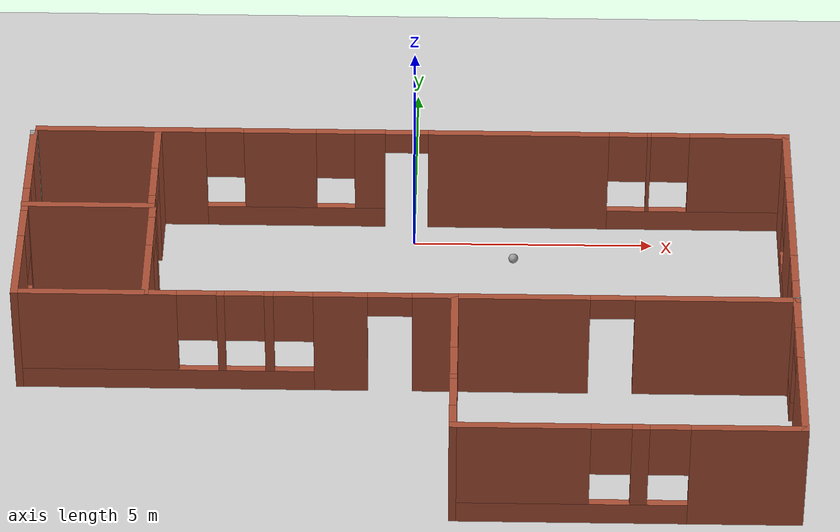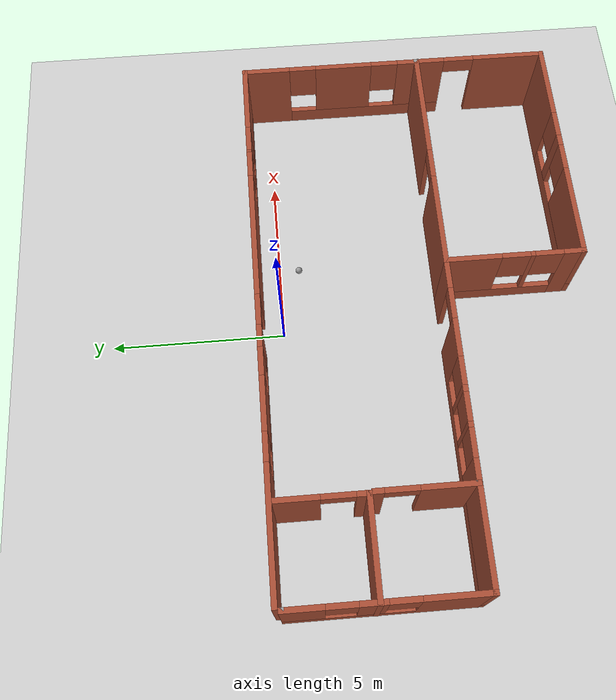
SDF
<sdf version="1.6">
 <world name="default">
  <light name="sun" type="directional">
   <pose>0 0 10 0 -0 0</pose>
   <diffuse>0.8 0.8 0.8 1</diffuse>
   <specular>0.2 0.2 0.2 1</specular>
   <attenuation>
    <range>1000</range>
    <constant>0.9</constant>
    <linear>0.01</linear>
    <quadratic>0.001</quadratic>
   </attenuation>
   <direction>-0.5 0.1 -0.9</direction>
  </light>
  <model name="ground_plane">
   <static>1</static>
   <link name="link">
    <collision name="collision">
     <geometry><plane><normal>0 0 1</normal><size>100 100</size></plane></geometry>
     <surface>
      <contact><collide_bitmask>65535</collide_bitmask></contact>
      <friction><ode><mu>100</mu><mu2>50</mu2></ode></friction>
     </surface>
    </collision>
    <visual name="visual">
     <cast_shadows>0</cast_shadows>
     <geometry><plane><normal>0 0 1</normal><size>100 100</size></plane></geometry>
     <material>
      <script><uri>file://media/materials/scripts/gazebo.material</uri><name>Gazebo/Grey</name></script>
     </material>
    </visual>
   </link>
  </model>
  <gravity>0 0 -9.8</gravity>
  <magnetic_field>6e-06 2.3e-05 -4.2e-05</magnetic_field>
  <atmosphere type="adiabatic"/>
  <physics name="default_physics" default="0" type="ode">
   <max_step_size>0.001</max_step_size>
   <real_time_factor>1</real_time_factor>
   <real_time_update_rate>1000</real_time_update_rate>
  </physics>
  <scene><ambient>0.4 0.4 0.4 1</ambient><background>0.7 0.7 0.7 1</background><shadows>1</shadows></scene>
  <spherical_coordinates>
   <surface_model>EARTH_WGS84</surface_model>
   <latitude_deg>0</latitude_deg>
   <longitude_deg>0</longitude_deg>
   <elevation>0</elevation>
   <heading_deg>0</heading_deg>
  </spherical_coordinates>
  <model name="Building">
   <pose>-0.117443 -3.92909 0 0 -0 0</pose>
   <link name="Wall_0">
    <pose>0.048201 4.55 0 0 -0 0</pose>
    <visual name="Wall_0_Visual_0">
     <pose>-6.09569 0 1.25 0 -0 0</pose>
     <geometry><box><size>3.55863 0.15 2.5</size></box></geometry>
     <material>
      <script><uri>file://media/materials/scripts/gazebo.material</uri><name>Gazebo/Bricks</name></script>
      <ambient>1 1 1 1</ambient>
     </material>
     <meta><layer>0</layer></meta>
    </visual>
    <collision name="Wall_0_Collision_0">
     <geometry><box><size>3.55863 0.15 2.5</size></box></geometry>
     <pose>-6.09569 0 1.25 0 -0 0</pose>
    </collision>
    <visual name="Wall_0_Visual_1">
     <pose>2.22668 0 1.25 0 -0 0</pose>
     <geometry><box><size>3.77843 0.15 2.5</size></box></geometry>
     <material>
      <script><uri>file://media/materials/scripts/gazebo.material</uri><name>Gazebo/Bricks</name></script>
      <ambient>1 1 1 1</ambient>
     </material>
     <meta><layer>0</layer></meta>
    </visual>
    <collision name="Wall_0_Collision_1">
     <geometry><box><size>3.77843 0.15 2.5</size></box></geometry>
     <pose>2.22668 0 1.25 0 -0 0</pose>
    </collision>
    <visual name="Wall_0_Visual_2">
     <pose>-2.43946 0 0.25 0 -0 0</pose>
     <geometry><box><size>3.75383 0.15 0.5</size></box></geometry>
     <material>
      <script><uri>file://media/materials/scripts/gazebo.material</uri><name>Gazebo/Bricks</name></script>
      <ambient>1 1 1 1</ambient>
     </material>
     <meta><layer>0</layer></meta>
    </visual>
    <collision name="Wall_0_Collision_2">
     <geometry><box><size>3.75383 0.15 0.5</size></box></geometry>
     <pose>-2.43946 0 0.25 0 -0 0</pose>
    </collision>
    <visual name="Wall_0_Visual_3">
     <pose>5.99545 0 0.25 0 -0 0</pose>
     <geometry><box><size>3.75911 0.15 0.5</size></box></geometry>
     <material>
      <script><uri>file://media/materials/scripts/gazebo.material</uri><name>Gazebo/Bricks</name></script>
      <ambient>1 1 1 1</ambient>
     </material>
     <meta><layer>0</layer></meta>
    </visual>
    <collision name="Wall_0_Collision_3">
     <geometry><box><size>3.75911 0.15 0.5</size></box></geometry>
     <pose>5.99545 0 0.25 0 -0 0</pose>
    </collision>
    <visual name="Wall_0_Visual_4">
     <pose>-2.75926 0 1.5 0 -0 0</pose>
     <geometry><box><size>1.51422 0.15 2</size></box></geometry>
     <material>
      <script><uri>file://media/materials/scripts/gazebo.material</uri><name>Gazebo/Bricks</name></script>
      <ambient>1 1 1 1</ambient>
     </material>
     <meta><layer>0</layer></meta>
    </visual>
    <collision name="Wall_0_Collision_4">
     <geometry><box><size>1.51422 0.15 2</size></box></geometry>
     <pose>-2.75926 0 1.5 0 -0 0</pose>
    </collision>
    <visual name="Wall_0_Visual_5">
     <pose>-0.882348 0 1.5 0 -0 0</pose>
     <geometry><box><size>0.639611 0.15 2</size></box></geometry>
     <material>
      <script><uri>file://media/materials/scripts/gazebo.material</uri><name>Gazebo/Bricks</name></script>
      <ambient>1 1 1 1</ambient>
     </material>
     <meta><layer>0</layer></meta>
    </visual>
    <collision name="Wall_0_Collision_5">
     <geometry><box><size>0.639611 0.15 2</size></box></geometry>
     <pose>-0.882348 0 1.5 0 -0 0</pose>
    </collision>
    <visual name="Wall_0_Visual_6">
     <pose>-0.882348 0 1.5 0 -0 0</pose>
     <geometry><box><size>0.639611 0.15 2</size></box></geometry>
     <material>
      <script><uri>file://media/materials/scripts/gazebo.material</uri><name>Gazebo/Bricks</name></script>
      <ambient>1 1 1 1</ambient>
     </material>
     <meta><layer>0</layer></meta>
    </visual>
    <collision name="Wall_0_Collision_6">
     <geometry><box><size>0.639611 0.15 2</size></box></geometry>
     <pose>-0.882348 0 1.5 0 -0 0</pose>
    </collision>
    <visual name="Wall_0_Visual_7">
     <pose>4.95479 0 1.5 0 -0 0</pose>
     <geometry><box><size>0.077807 0.15 2</size></box></geometry>
     <material>
      <script><uri>file://media/materials/scripts/gazebo.material</uri><name>Gazebo/Bricks</name></script>
      <ambient>1 1 1 1</ambient>
     </material>
     <meta><layer>0</layer></meta>
    </visual>
    <collision name="Wall_0_Collision_7">
     <geometry><box><size>0.077807 0.15 2</size></box></geometry>
     <pose>4.95479 0 1.5 0 -0 0</pose>
    </collision>
    <visual name="Wall_0_Visual_8">
     <pose>6.83435 0 1.5 0 -0 0</pose>
     <geometry><box><size>2.0813 0.15 2</size></box></geometry>
     <material>
      <script><uri>file://media/materials/scripts/gazebo.material</uri><name>Gazebo/Bricks</name></script>
      <ambient>1 1 1 1</ambient>
     </material>
     <meta><layer>0</layer></meta>
    </visual>
    <collision name="Wall_0_Collision_8">
     <geometry><box><size>2.0813 0.15 2</size></box></geometry>
     <pose>6.83435 0 1.5 0 -0 0</pose>
    </collision>
    <visual name="Wall_0_Visual_9">
     <pose>-3.91637 0 1.9 0 -0 0</pose>
     <geometry><box><size>0.8 0.15 1.2</size></box></geometry>
     <material>
      <script><uri>file://media/materials/scripts/gazebo.material</uri><name>Gazebo/Bricks</name></script>
      <ambient>1 1 1 1</ambient>
     </material>
     <meta><layer>0</layer></meta>
    </visual>
    <collision name="Wall_0_Collision_9">
     <geometry><box><size>0.8 0.15 1.2</size></box></geometry>
     <pose>-3.91637 0 1.9 0 -0 0</pose>
    </collision>
    <visual name="Wall_0_Visual_10">
     <pose>4.51589 0 1.9 0 -0 0</pose>
     <geometry><box><size>0.8 0.15 1.2</size></box></geometry>
     <material>
      <script><uri>file://media/materials/scripts/gazebo.material</uri><name>Gazebo/Bricks</name></script>
      <ambient>1 1 1 1</ambient>
     </material>
     <meta><layer>0</layer></meta>
    </visual>
    <collision name="Wall_0_Collision_10">
     <geometry><box><size>0.8 0.15 1.2</size></box></geometry>
     <pose>4.51589 0 1.9 0 -0 0</pose>
    </collision>
    <visual name="Wall_0_Visual_11">
     <pose>-1.60215 0 1.9 0 -0 0</pose>
     <geometry><box><size>0.8 0.15 1.2</size></box></geometry>
     <material>
      <script><uri>file://media/materials/scripts/gazebo.material</uri><name>Gazebo/Bricks</name></script>
      <ambient>1 1 1 1</ambient>
     </material>
     <meta><layer>0</layer></meta>
    </visual>
    <collision name="Wall_0_Collision_11">
     <geometry><box><size>0.8 0.15 1.2</size></box></geometry>
     <pose>-1.60215 0 1.9 0 -0 0</pose>
    </collision>
    <visual name="Wall_0_Visual_12">
     <pose>5.3937 0 1.9 0 -0 0</pose>
     <geometry><box><size>0.8 0.15 1.2</size></box></geometry>
     <material>
      <script><uri>file://media/materials/scripts/gazebo.material</uri><name>Gazebo/Bricks</name></script>
      <ambient>1 1 1 1</ambient>
     </material>
     <meta><layer>0</layer></meta>
    </visual>
    <collision name="Wall_0_Collision_12">
     <geometry><box><size>0.8 0.15 1.2</size></box></geometry>
     <pose>5.3937 0 1.9 0 -0 0</pose>
    </collision>
    <visual name="Wall_0_Visual_13">
     <pose>-0.112543 0 2.25 0 -0 0</pose>
     <geometry><box><size>0.9 0.15 0.5</size></box></geometry>
     <material>
      <script><uri>file://media/materials/scripts/gazebo.material</uri><name>Gazebo/Bricks</name></script>
      <ambient>1 1 1 1</ambient>
     </material>
     <meta><layer>0</layer></meta>
    </visual>
    <collision name="Wall_0_Collision_13">
     <geometry><box><size>0.9 0.15 0.5</size></box></geometry>
     <pose>-0.112543 0 2.25 0 -0 0</pose>
    </collision>
    <visual name="Wall_0_Visual_14">
     <pose>-0.112543 0 2.25 0 -0 0</pose>
     <geometry><box><size>0.9 0.15 0.5</size></box></geometry>
     <material>
      <script><uri>file://media/materials/scripts/gazebo.material</uri><name>Gazebo/Bricks</name></script>
      <ambient>1 1 1 1</ambient>
     </material>
     <meta><layer>0</layer></meta>
    </visual>
    <collision name="Wall_0_Collision_14">
     <geometry><box><size>0.9 0.15 0.5</size></box></geometry>
     <pose>-0.112543 0 2.25 0 -0 0</pose>
    </collision>
   </link>
   <link name="Wall_1">
    <pose>7.8482 0 0 0 0 -1.5708</pose>
    <visual name="Wall_1_Visual_0">
     <pose>-3.90969 0 1.25 0 -0 0</pose>
     <geometry><box><size>1.43061 0.15 2.5</size></box></geometry>
     <material>
      <script><uri>file://media/materials/scripts/gazebo.material</uri><name>Gazebo/Bricks</name></script>
      <ambient>1 1 1 1</ambient>
     </material>
     <meta><layer>0</layer></meta>
    </visual>
    <collision name="Wall_1_Collision_0">
     <geometry><box><size>1.43061 0.15 2.5</size></box></geometry>
     <pose>-3.90969 0 1.25 0 -0 0</pose>
    </collision>
    <visual name="Wall_1_Visual_1">
     <pose>3.53432 0 1.25 0 -0 0</pose>
     <geometry><box><size>2.18135 0.15 2.5</size></box></geometry>
     <material>
      <script><uri>file://media/materials/scripts/gazebo.material</uri><name>Gazebo/Bricks</name></script>
      <ambient>1 1 1 1</ambient>
     </material>
     <meta><layer>0</layer></meta>
    </visual>
    <collision name="Wall_1_Collision_1">
     <geometry><box><size>2.18135 0.15 2.5</size></box></geometry>
     <pose>3.53432 0 1.25 0 -0 0</pose>
    </collision>
    <visual name="Wall_1_Visual_2">
     <pose>-0.825369 0 0.25 0 -0 0</pose>
     <geometry><box><size>4.73804 0.15 0.5</size></box></geometry>
     <material>
      <script><uri>file://media/materials/scripts/gazebo.material</uri><name>Gazebo/Bricks</name></script>
      <ambient>1 1 1 1</ambient>
     </material>
     <meta><layer>0</layer></meta>
    </visual>
    <collision name="Wall_1_Collision_2">
     <geometry><box><size>4.73804 0.15 0.5</size></box></geometry>
     <pose>-0.825369 0 0.25 0 -0 0</pose>
    </collision>
    <visual name="Wall_1_Visual_3">
     <pose>-1.54418 0 1.5 0 -0 0</pose>
     <geometry><box><size>1.70042 0.15 2</size></box></geometry>
     <material>
      <script><uri>file://media/materials/scripts/gazebo.material</uri><name>Gazebo/Bricks</name></script>
      <ambient>1 1 1 1</ambient>
     </material>
     <meta><layer>0</layer></meta>
    </visual>
    <collision name="Wall_1_Collision_3">
     <geometry><box><size>1.70042 0.15 2</size></box></geometry>
     <pose>-1.54418 0 1.5 0 -0 0</pose>
    </collision>
    <visual name="Wall_1_Visual_4">
     <pose>0.82484 0 1.5 0 -0 0</pose>
     <geometry><box><size>1.43762 0.15 2</size></box></geometry>
     <material>
      <script><uri>file://media/materials/scripts/gazebo.material</uri><name>Gazebo/Bricks</name></script>
      <ambient>1 1 1 1</ambient>
     </material>
     <meta><layer>0</layer></meta>
    </visual>
    <collision name="Wall_1_Collision_4">
     <geometry><box><size>1.43762 0.15 2</size></box></geometry>
     <pose>0.82484 0 1.5 0 -0 0</pose>
    </collision>
    <visual name="Wall_1_Visual_5">
     <pose>-2.79439 0 1.9 0 -0 0</pose>
     <geometry><box><size>0.8 0.15 1.2</size></box></geometry>
     <material>
      <script><uri>file://media/materials/scripts/gazebo.material</uri><name>Gazebo/Bricks</name></script>
      <ambient>1 1 1 1</ambient>
     </material>
     <meta><layer>0</layer></meta>
    </visual>
    <collision name="Wall_1_Collision_5">
     <geometry><box><size>0.8 0.15 1.2</size></box></geometry>
     <pose>-2.79439 0 1.9 0 -0 0</pose>
    </collision>
    <visual name="Wall_1_Visual_6">
     <pose>-0.293968 0 1.9 0 -0 0</pose>
     <geometry><box><size>0.8 0.15 1.2</size></box></geometry>
     <material>
      <script><uri>file://media/materials/scripts/gazebo.material</uri><name>Gazebo/Bricks</name></script>
      <ambient>1 1 1 1</ambient>
     </material>
     <meta><layer>0</layer></meta>
    </visual>
    <collision name="Wall_1_Collision_6">
     <geometry><box><size>0.8 0.15 1.2</size></box></geometry>
     <pose>-0.293968 0 1.9 0 -0 0</pose>
    </collision>
    <visual name="Wall_1_Visual_7">
     <pose>1.99365 0 2.25 0 -0 0</pose>
     <geometry><box><size>0.9 0.15 0.5</size></box></geometry>
     <material>
      <script><uri>file://media/materials/scripts/gazebo.material</uri><name>Gazebo/Bricks</name></script>
      <ambient>1 1 1 1</ambient>
     </material>
     <meta><layer>0</layer></meta>
    </visual>
    <collision name="Wall_1_Collision_7">
     <geometry><box><size>0.9 0.15 0.5</size></box></geometry>
     <pose>1.99365 0 2.25 0 -0 0</pose>
    </collision>
   </link>
   <link name="Wall_13">
    <collision name="Wall_13_Collision">
     <geometry><box><size>2.75 0.15 2.5</size></box></geometry>
     <pose>0 0 1.25 0 -0 0</pose>
    </collision>
    <visual name="Wall_13_Visual">
     <pose>0 0 1.25 0 -0 0</pose>
     <geometry><box><size>2.75 0.15 2.5</size></box></geometry>
     <material>
      <script><uri>file://media/materials/scripts/gazebo.material</uri><name>Gazebo/Bricks</name></script>
      <ambient>1 1 1 1</ambient>
     </material>
     <meta><layer>0</layer></meta>
    </visual>
    <pose>-6.5582 2.04958 0 0 -0 0</pose>
   </link>
   <link name="Wall_14">
    <pose>-5.2582 3.22458 0 0 -0 1.5708</pose>
    <visual name="Wall_14_Visual_0">
     <pose>-1.0518 0 1.25 0 -0 0</pose>
     <geometry><box><size>0.396406 0.15 2.5</size></box></geometry>
     <material>
      <script><uri>file://media/materials/scripts/gazebo.material</uri><name>Gazebo/Bricks</name></script>
      <ambient>1 1 1 1</ambient>
     </material>
     <meta><layer>0</layer></meta>
    </visual>
    <collision name="Wall_14_Collision_0">
     <geometry><box><size>0.396406 0.15 2.5</size></box></geometry>
     <pose>-1.0518 0 1.25 0 -0 0</pose>
    </collision>
    <visual name="Wall_14_Visual_1">
     <pose>0.648203 0 1.25 0 -0 0</pose>
     <geometry><box><size>1.20359 0.15 2.5</size></box></geometry>
     <material>
      <script><uri>file://media/materials/scripts/gazebo.material</uri><name>Gazebo/Bricks</name></script>
      <ambient>1 1 1 1</ambient>
     </material>
     <meta><layer>0</layer></meta>
    </visual>
    <collision name="Wall_14_Collision_1">
     <geometry><box><size>1.20359 0.15 2.5</size></box></geometry>
     <pose>0.648203 0 1.25 0 -0 0</pose>
    </collision>
    <visual name="Wall_14_Visual_2">
     <pose>-0.403594 0 2.25 0 -0 0</pose>
     <geometry><box><size>0.9 0.15 0.5</size></box></geometry>
     <material>
      <script><uri>file://media/materials/scripts/gazebo.material</uri><name>Gazebo/Bricks</name></script>
      <ambient>1 1 1 1</ambient>
     </material>
     <meta><layer>0</layer></meta>
    </visual>
    <collision name="Wall_14_Collision_2">
     <geometry><box><size>0.9 0.15 0.5</size></box></geometry>
     <pose>-0.403594 0 2.25 0 -0 0</pose>
    </collision>
   </link>
   <link name="Wall_16">
    <pose>4.4232 -0.7 0 0 -0 0</pose>
    <visual name="Wall_16_Visual_0">
     <pose>-2.10406 0 1.25 0 -0 0</pose>
     <geometry><box><size>2.79189 0.15 2.5</size></box></geometry>
     <material>
      <script><uri>file://media/materials/scripts/gazebo.material</uri><name>Gazebo/Bricks</name></script>
      <ambient>1 1 1 1</ambient>
     </material>
     <meta><layer>0</layer></meta>
    </visual>
    <collision name="Wall_16_Collision_0">
     <geometry><box><size>2.79189 0.15 2.5</size></box></geometry>
     <pose>-2.10406 0 1.25 0 -0 0</pose>
    </collision>
    <visual name="Wall_16_Visual_1">
     <pose>1.84594 0 1.25 0 -0 0</pose>
     <geometry><box><size>3.30811 0.15 2.5</size></box></geometry>
     <material>
      <script><uri>file://media/materials/scripts/gazebo.material</uri><name>Gazebo/Bricks</name></script>
      <ambient>1 1 1 1</ambient>
     </material>
     <meta><layer>0</layer></meta>
    </visual>
    <collision name="Wall_16_Collision_1">
     <geometry><box><size>3.30811 0.15 2.5</size></box></geometry>
     <pose>1.84594 0 1.25 0 -0 0</pose>
    </collision>
    <visual name="Wall_16_Visual_2">
     <pose>-0.258111 0 2.25 0 -0 0</pose>
     <geometry><box><size>0.9 0.15 0.5</size></box></geometry>
     <material>
      <script><uri>file://media/materials/scripts/gazebo.material</uri><name>Gazebo/Bricks</name></script>
      <ambient>1 1 1 1</ambient>
     </material>
     <meta><layer>0</layer></meta>
    </visual>
    <collision name="Wall_16_Collision_2">
     <geometry><box><size>0.9 0.15 0.5</size></box></geometry>
     <pose>-0.258111 0 2.25 0 -0 0</pose>
    </collision>
   </link>
   <link name="Wall_17">
    <collision name="Wall_17_Collision">
     <geometry><box><size>0.15 0.15 2.5</size></box></geometry>
     <pose>0 0 1.25 0 -0 0</pose>
    </collision>
    <visual name="Wall_17_Visual">
     <pose>0 0 1.25 0 -0 0</pose>
     <geometry><box><size>0.15 0.15 2.5</size></box></geometry>
     <material>
      <script><uri>file://media/materials/scripts/gazebo.material</uri><name>Gazebo/Grey</name></script>
      <ambient>1 1 1 1</ambient>
     </material>
     <meta><layer>0</layer></meta>
    </visual>
    <pose>7.8482 -0.7 0 0 -0 0</pose>
   </link>
   <link name="Wall_18">
    <collision name="Wall_18_Collision">
     <geometry><box><size>0.16 0.15 2.5</size></box></geometry>
     <pose>0 0 1.25 0 -0 0</pose>
    </collision>
    <visual name="Wall_18_Visual">
     <pose>0 0 1.25 0 -0 0</pose>
     <geometry><box><size>0.16 0.15 2.5</size></box></geometry>
     <material>
      <script><uri>file://media/materials/scripts/gazebo.material</uri><name>Gazebo/Grey</name></script>
      <ambient>1 1 1 1</ambient>
     </material>
     <meta><layer>0</layer></meta>
    </visual>
    <pose>7.8532 -0.7 0 0 -0 0</pose>
   </link>
   <link name="Wall_2">
    <pose>4.4232 -4.55 0 0 -0 3.14159</pose>
    <visual name="Wall_2_Visual_0">
     <pose>-2.35295 0 1.25 0 -0 0</pose>
     <geometry><box><size>2.2941 0.15 2.5</size></box></geometry>
     <material>
      <script><uri>file://media/materials/scripts/gazebo.material</uri><name>Gazebo/Bricks</name></script>
      <ambient>1 1 1 1</ambient>
     </material>
     <meta><layer>0</layer></meta>
    </visual>
    <collision name="Wall_2_Collision_0">
     <geometry><box><size>2.2941 0.15 2.5</size></box></geometry>
     <pose>-2.35295 0 1.25 0 -0 0</pose>
    </collision>
    <visual name="Wall_2_Visual_1">
     <pose>1.14705 0 0.25 0 -0 0</pose>
     <geometry><box><size>4.7059 0.15 0.5</size></box></geometry>
     <material>
      <script><uri>file://media/materials/scripts/gazebo.material</uri><name>Gazebo/Bricks</name></script>
      <ambient>1 1 1 1</ambient>
     </material>
     <meta><layer>0</layer></meta>
    </visual>
    <collision name="Wall_2_Collision_1">
     <geometry><box><size>4.7059 0.15 0.5</size></box></geometry>
     <pose>1.14705 0 0.25 0 -0 0</pose>
    </collision>
    <visual name="Wall_2_Visual_2">
     <pose>-0.233993 0 1.5 0 -0 0</pose>
     <geometry><box><size>0.343809 0.15 2</size></box></geometry>
     <material>
      <script><uri>file://media/materials/scripts/gazebo.material</uri><name>Gazebo/Bricks</name></script>
      <ambient>1 1 1 1</ambient>
     </material>
     <meta><layer>0</layer></meta>
    </visual>
    <collision name="Wall_2_Collision_2">
     <geometry><box><size>0.343809 0.15 2</size></box></geometry>
     <pose>-0.233993 0 1.5 0 -0 0</pose>
    </collision>
    <visual name="Wall_2_Visual_3">
     <pose>2.11896 0 1.5 0 -0 0</pose>
     <geometry><box><size>2.76209 0.15 2</size></box></geometry>
     <material>
      <script><uri>file://media/materials/scripts/gazebo.material</uri><name>Gazebo/Bricks</name></script>
      <ambient>1 1 1 1</ambient>
     </material>
     <meta><layer>0</layer></meta>
    </visual>
    <collision name="Wall_2_Collision_3">
     <geometry><box><size>2.76209 0.15 2</size></box></geometry>
     <pose>2.11896 0 1.5 0 -0 0</pose>
    </collision>
    <visual name="Wall_2_Visual_4">
     <pose>-0.805897 0 1.9 0 -0 0</pose>
     <geometry><box><size>0.8 0.15 1.2</size></box></geometry>
     <material>
      <script><uri>file://media/materials/scripts/gazebo.material</uri><name>Gazebo/Bricks</name></script>
      <ambient>1 1 1 1</ambient>
     </material>
     <meta><layer>0</layer></meta>
    </visual>
    <collision name="Wall_2_Collision_4">
     <geometry><box><size>0.8 0.15 1.2</size></box></geometry>
     <pose>-0.805897 0 1.9 0 -0 0</pose>
    </collision>
    <visual name="Wall_2_Visual_5">
     <pose>0.337912 0 1.9 0 -0 0</pose>
     <geometry><box><size>0.8 0.15 1.2</size></box></geometry>
     <material>
      <script><uri>file://media/materials/scripts/gazebo.material</uri><name>Gazebo/Bricks</name></script>
      <ambient>1 1 1 1</ambient>
     </material>
     <meta><layer>0</layer></meta>
    </visual>
    <collision name="Wall_2_Collision_5">
     <geometry><box><size>0.8 0.15 1.2</size></box></geometry>
     <pose>0.337912 0 1.9 0 -0 0</pose>
    </collision>
   </link>
   <link name="Wall_3">
    <pose>0.998201 -2.625 0 0 -0 1.5708</pose>
    <visual name="Wall_3_Visual_0">
     <pose>-1.68233 0 1.25 0 -0 0</pose>
     <geometry><box><size>0.635339 0.15 2.5</size></box></geometry>
     <material>
      <script><uri>file://media/materials/scripts/gazebo.material</uri><name>Gazebo/Bricks</name></script>
      <ambient>1 1 1 1</ambient>
     </material>
     <meta><layer>0</layer></meta>
    </visual>
    <collision name="Wall_3_Collision_0">
     <geometry><box><size>0.635339 0.15 2.5</size></box></geometry>
     <pose>-1.68233 0 1.25 0 -0 0</pose>
    </collision>
    <visual name="Wall_3_Visual_1">
     <pose>0.317669 0 0.25 0 -0 0</pose>
     <geometry><box><size>3.36466 0.15 0.5</size></box></geometry>
     <material>
      <script><uri>file://media/materials/scripts/gazebo.material</uri><name>Gazebo/Bricks</name></script>
      <ambient>1 1 1 1</ambient>
     </material>
     <meta><layer>0</layer></meta>
    </visual>
    <collision name="Wall_3_Collision_1">
     <geometry><box><size>3.36466 0.15 0.5</size></box></geometry>
     <pose>0.317669 0 0.25 0 -0 0</pose>
    </collision>
    <visual name="Wall_3_Visual_2">
     <pose>-0.499157 0 1.5 0 -0 0</pose>
     <geometry><box><size>0.131007 0.15 2</size></box></geometry>
     <material>
      <script><uri>file://media/materials/scripts/gazebo.material</uri><name>Gazebo/Bricks</name></script>
      <ambient>1 1 1 1</ambient>
     </material>
     <meta><layer>0</layer></meta>
    </visual>
    <collision name="Wall_3_Collision_2">
     <geometry><box><size>0.131007 0.15 2</size></box></geometry>
     <pose>-0.499157 0 1.5 0 -0 0</pose>
    </collision>
    <visual name="Wall_3_Visual_3">
     <pose>1.18317 0 1.5 0 -0 0</pose>
     <geometry><box><size>1.63365 0.15 2</size></box></geometry>
     <material>
      <script><uri>file://media/materials/scripts/gazebo.material</uri><name>Gazebo/Bricks</name></script>
      <ambient>1 1 1 1</ambient>
     </material>
     <meta><layer>0</layer></meta>
    </visual>
    <collision name="Wall_3_Collision_3">
     <geometry><box><size>1.63365 0.15 2</size></box></geometry>
     <pose>1.18317 0 1.5 0 -0 0</pose>
    </collision>
    <visual name="Wall_3_Visual_4">
     <pose>-0.964661 0 1.9 0 -0 0</pose>
     <geometry><box><size>0.8 0.15 1.2</size></box></geometry>
     <material>
      <script><uri>file://media/materials/scripts/gazebo.material</uri><name>Gazebo/Bricks</name></script>
      <ambient>1 1 1 1</ambient>
     </material>
     <meta><layer>0</layer></meta>
    </visual>
    <collision name="Wall_3_Collision_4">
     <geometry><box><size>0.8 0.15 1.2</size></box></geometry>
     <pose>-0.964661 0 1.9 0 -0 0</pose>
    </collision>
    <visual name="Wall_3_Visual_5">
     <pose>-0.033654 0 1.9 0 -0 0</pose>
     <geometry><box><size>0.8 0.15 1.2</size></box></geometry>
     <material>
      <script><uri>file://media/materials/scripts/gazebo.material</uri><name>Gazebo/Bricks</name></script>
      <ambient>1 1 1 1</ambient>
     </material>
     <meta><layer>0</layer></meta>
    </visual>
    <collision name="Wall_3_Collision_5">
     <geometry><box><size>0.8 0.15 1.2</size></box></geometry>
     <pose>-0.033654 0 1.9 0 -0 0</pose>
    </collision>
   </link>
   <link name="Wall_4">
    <pose>-3.4268 -0.7 0 0 -0 3.14159</pose>
    <visual name="Wall_4_Visual_0">
     <pose>-4.03653 0 1.25 0 -0 0</pose>
     <geometry><box><size>0.926944 0.15 2.5</size></box></geometry>
     <material>
      <script><uri>file://media/materials/scripts/gazebo.material</uri><name>Gazebo/Bricks</name></script>
      <ambient>1 1 1 1</ambient>
     </material>
     <meta><layer>0</layer></meta>
    </visual>
    <collision name="Wall_4_Collision_0">
     <geometry><box><size>0.926944 0.15 2.5</size></box></geometry>
     <pose>-4.03653 0 1.25 0 -0 0</pose>
    </collision>
    <visual name="Wall_4_Visual_1">
     <pose>-2.12715 0 1.25 0 -0 0</pose>
     <geometry><box><size>1.09181 0.15 2.5</size></box></geometry>
     <material>
      <script><uri>file://media/materials/scripts/gazebo.material</uri><name>Gazebo/Bricks</name></script>
      <ambient>1 1 1 1</ambient>
     </material>
     <meta><layer>0</layer></meta>
    </visual>
    <collision name="Wall_4_Collision_1">
     <geometry><box><size>1.09181 0.15 2.5</size></box></geometry>
     <pose>-2.12715 0 1.25 0 -0 0</pose>
    </collision>
    <visual name="Wall_4_Visual_2">
     <pose>1.45938 0 0.25 0 -0 0</pose>
     <geometry><box><size>6.08124 0.15 0.5</size></box></geometry>
     <material>
      <script><uri>file://media/materials/scripts/gazebo.material</uri><name>Gazebo/Bricks</name></script>
      <ambient>1 1 1 1</ambient>
     </material>
     <meta><layer>0</layer></meta>
    </visual>
    <collision name="Wall_4_Collision_2">
     <geometry><box><size>6.08124 0.15 0.5</size></box></geometry>
     <pose>1.45938 0 0.25 0 -0 0</pose>
    </collision>
    <visual name="Wall_4_Visual_3">
     <pose>-0.689137 0 1.5 0 -0 0</pose>
     <geometry><box><size>0.184207 0.15 2</size></box></geometry>
     <material>
      <script><uri>file://media/materials/scripts/gazebo.material</uri><name>Gazebo/Bricks</name></script>
      <ambient>1 1 1 1</ambient>
     </material>
     <meta><layer>0</layer></meta>
    </visual>
    <collision name="Wall_4_Collision_3">
     <geometry><box><size>0.184207 0.15 2</size></box></geometry>
     <pose>-0.689137 0 1.5 0 -0 0</pose>
    </collision>
    <visual name="Wall_4_Visual_4">
     <pose>0.28177 0 1.5 0 -0 0</pose>
     <geometry><box><size>0.157607 0.15 2</size></box></geometry>
     <material>
      <script><uri>file://media/materials/scripts/gazebo.material</uri><name>Gazebo/Bricks</name></script>
      <ambient>1 1 1 1</ambient>
     </material>
     <meta><layer>0</layer></meta>
    </visual>
    <collision name="Wall_4_Collision_4">
     <geometry><box><size>0.157607 0.15 2</size></box></geometry>
     <pose>0.28177 0 1.5 0 -0 0</pose>
    </collision>
    <visual name="Wall_4_Visual_5">
     <pose>2.83029 0 1.5 0 -0 0</pose>
     <geometry><box><size>3.33943 0.15 2</size></box></geometry>
     <material>
      <script><uri>file://media/materials/scripts/gazebo.material</uri><name>Gazebo/Bricks</name></script>
      <ambient>1 1 1 1</ambient>
     </material>
     <meta><layer>0</layer></meta>
    </visual>
    <collision name="Wall_4_Collision_5">
     <geometry><box><size>3.33943 0.15 2</size></box></geometry>
     <pose>2.83029 0 1.5 0 -0 0</pose>
    </collision>
    <visual name="Wall_4_Visual_6">
     <pose>-1.18124 0 1.9 0 -0 0</pose>
     <geometry><box><size>0.8 0.15 1.2</size></box></geometry>
     <material>
      <script><uri>file://media/materials/scripts/gazebo.material</uri><name>Gazebo/Bricks</name></script>
      <ambient>1 1 1 1</ambient>
     </material>
     <meta><layer>0</layer></meta>
    </visual>
    <collision name="Wall_4_Collision_6">
     <geometry><box><size>0.8 0.15 1.2</size></box></geometry>
     <pose>-1.18124 0 1.9 0 -0 0</pose>
    </collision>
    <visual name="Wall_4_Visual_7">
     <pose>-0.197034 0 1.9 0 -0 0</pose>
     <geometry><box><size>0.8 0.15 1.2</size></box></geometry>
     <material>
      <script><uri>file://media/materials/scripts/gazebo.material</uri><name>Gazebo/Bricks</name></script>
      <ambient>1 1 1 1</ambient>
     </material>
     <meta><layer>0</layer></meta>
    </visual>
    <collision name="Wall_4_Collision_7">
     <geometry><box><size>0.8 0.15 1.2</size></box></geometry>
     <pose>-0.197034 0 1.9 0 -0 0</pose>
    </collision>
    <visual name="Wall_4_Visual_8">
     <pose>0.760573 0 1.9 0 -0 0</pose>
     <geometry><box><size>0.8 0.15 1.2</size></box></geometry>
     <material>
      <script><uri>file://media/materials/scripts/gazebo.material</uri><name>Gazebo/Bricks</name></script>
      <ambient>1 1 1 1</ambient>
     </material>
     <meta><layer>0</layer></meta>
    </visual>
    <collision name="Wall_4_Collision_8">
     <geometry><box><size>0.8 0.15 1.2</size></box></geometry>
     <pose>0.760573 0 1.9 0 -0 0</pose>
    </collision>
    <visual name="Wall_4_Visual_9">
     <pose>-3.12306 0 2.25 0 -0 0</pose>
     <geometry><box><size>0.9 0.15 0.5</size></box></geometry>
     <material>
      <script><uri>file://media/materials/scripts/gazebo.material</uri><name>Gazebo/Bricks</name></script>
      <ambient>1 1 1 1</ambient>
     </material>
     <meta><layer>0</layer></meta>
    </visual>
    <collision name="Wall_4_Collision_9">
     <geometry><box><size>0.9 0.15 0.5</size></box></geometry>
     <pose>-3.12306 0 2.25 0 -0 0</pose>
    </collision>
   </link>
   <link name="Wall_5">
    <pose>-7.8518 1.85 0 0 -0 1.5708</pose>
    <visual name="Wall_5_Visual_0">
     <pose>-1.71861 0 1.25 0 -0 0</pose>
     <geometry><box><size>1.81278 0.15 2.5</size></box></geometry>
     <material>
      <script><uri>file://media/materials/scripts/gazebo.material</uri><name>Gazebo/Bricks</name></script>
      <ambient>1 1 1 1</ambient>
     </material>
     <meta><layer>0</layer></meta>
    </visual>
    <collision name="Wall_5_Collision_0">
     <geometry><box><size>1.81278 0.15 2.5</size></box></geometry>
     <pose>-1.71861 0 1.25 0 -0 0</pose>
    </collision>
    <visual name="Wall_5_Visual_1">
     <pose>0.906388 0 0.25 0 -0 0</pose>
     <geometry><box><size>3.43722 0.15 0.5</size></box></geometry>
     <material>
      <script><uri>file://media/materials/scripts/gazebo.material</uri><name>Gazebo/Bricks</name></script>
      <ambient>1 1 1 1</ambient>
     </material>
     <meta><layer>0</layer></meta>
    </visual>
    <collision name="Wall_5_Collision_1">
     <geometry><box><size>3.43722 0.15 0.5</size></box></geometry>
     <pose>0.906388 0 0.25 0 -0 0</pose>
    </collision>
    <visual name="Wall_5_Visual_2">
     <pose>0.345882 0 1.5 0 -0 0</pose>
     <geometry><box><size>0.716211 0.15 2</size></box></geometry>
     <material>
      <script><uri>file://media/materials/scripts/gazebo.material</uri><name>Gazebo/Bricks</name></script>
      <ambient>1 1 1 1</ambient>
     </material>
     <meta><layer>0</layer></meta>
    </visual>
    <collision name="Wall_5_Collision_2">
     <geometry><box><size>0.716211 0.15 2</size></box></geometry>
     <pose>0.345882 0 1.5 0 -0 0</pose>
    </collision>
    <visual name="Wall_5_Visual_3">
     <pose>2.06449 0 1.5 0 -0 0</pose>
     <geometry><box><size>1.12101 0.15 2</size></box></geometry>
     <material>
      <script><uri>file://media/materials/scripts/gazebo.material</uri><name>Gazebo/Bricks</name></script>
      <ambient>1 1 1 1</ambient>
     </material>
     <meta><layer>0</layer></meta>
    </visual>
    <collision name="Wall_5_Collision_3">
     <geometry><box><size>1.12101 0.15 2</size></box></geometry>
     <pose>2.06449 0 1.5 0 -0 0</pose>
    </collision>
    <visual name="Wall_5_Visual_4">
     <pose>-0.412223 0 1.9 0 -0 0</pose>
     <geometry><box><size>0.8 0.15 1.2</size></box></geometry>
     <material>
      <script><uri>file://media/materials/scripts/gazebo.material</uri><name>Gazebo/Bricks</name></script>
      <ambient>1 1 1 1</ambient>
     </material>
     <meta><layer>0</layer></meta>
    </visual>
    <collision name="Wall_5_Collision_4">
     <geometry><box><size>0.8 0.15 1.2</size></box></geometry>
     <pose>-0.412223 0 1.9 0 -0 0</pose>
    </collision>
    <visual name="Wall_5_Visual_5">
     <pose>1.10399 0 1.9 0 -0 0</pose>
     <geometry><box><size>0.8 0.15 1.2</size></box></geometry>
     <material>
      <script><uri>file://media/materials/scripts/gazebo.material</uri><name>Gazebo/Bricks</name></script>
      <ambient>1 1 1 1</ambient>
     </material>
     <meta><layer>0</layer></meta>
    </visual>
    <collision name="Wall_5_Collision_5">
     <geometry><box><size>0.8 0.15 1.2</size></box></geometry>
     <pose>1.10399 0 1.9 0 -0 0</pose>
    </collision>
   </link>
   <link name="Wall_6">
    <collision name="Wall_6_Collision">
     <geometry><box><size>0.15 0.15 2.5</size></box></geometry>
     <pose>0 0 1.25 0 -0 0</pose>
    </collision>
    <visual name="Wall_6_Visual">
     <pose>0 0 1.25 0 -0 0</pose>
     <geometry><box><size>0.15 0.15 2.5</size></box></geometry>
     <material>
      <script><uri>file://media/materials/scripts/gazebo.material</uri><name>Gazebo/Grey</name></script>
      <ambient>1 1 1 1</ambient>
     </material>
     <meta><layer>0</layer></meta>
    </visual>
    <pose>-7.8518 4.4 0 0 -0 0</pose>
   </link>
   <link name="Wall_8">
    <pose>-5.22478 0.61658 0 0 0 -1.5708</pose>
    <visual name="Wall_8_Visual_0">
     <pose>-1.2167 0 1.25 0 -0 0</pose>
     <geometry><box><size>0.316605 0.15 2.5</size></box></geometry>
     <material>
      <script><uri>file://media/materials/scripts/gazebo.material</uri><name>Gazebo/Bricks</name></script>
      <ambient>1 1 1 1</ambient>
     </material>
     <meta><layer>0</layer></meta>
    </visual>
    <collision name="Wall_8_Collision_0">
     <geometry><box><size>0.316605 0.15 2.5</size></box></geometry>
     <pose>-1.2167 0 1.25 0 -0 0</pose>
    </collision>
    <visual name="Wall_8_Visual_1">
     <pose>0.608303 0 1.25 0 -0 0</pose>
     <geometry><box><size>1.5334 0.15 2.5</size></box></geometry>
     <material>
      <script><uri>file://media/materials/scripts/gazebo.material</uri><name>Gazebo/Bricks</name></script>
      <ambient>1 1 1 1</ambient>
     </material>
     <meta><layer>0</layer></meta>
    </visual>
    <collision name="Wall_8_Collision_1">
     <geometry><box><size>1.5334 0.15 2.5</size></box></geometry>
     <pose>0.608303 0 1.25 0 -0 0</pose>
    </collision>
    <visual name="Wall_8_Visual_2">
     <pose>-0.608395 0 2.25 0 -0 0</pose>
     <geometry><box><size>0.9 0.15 0.5</size></box></geometry>
     <material>
      <script><uri>file://media/materials/scripts/gazebo.material</uri><name>Gazebo/Bricks</name></script>
      <ambient>1 1 1 1</ambient>
     </material>
     <meta><layer>0</layer></meta>
    </visual>
    <collision name="Wall_8_Collision_2">
     <geometry><box><size>0.9 0.15 0.5</size></box></geometry>
     <pose>-0.608395 0 2.25 0 -0 0</pose>
    </collision>
   </link>
   <link name="Wall_9">
    <collision name="Wall_9_Collision">
     <geometry><box><size>0.15 0.15 2.5</size></box></geometry>
     <pose>0 0 1.25 0 -0 0</pose>
    </collision>
    <visual name="Wall_9_Visual">
     <pose>0 0 1.25 0 -0 0</pose>
     <geometry><box><size>0.15 0.15 2.5</size></box></geometry>
     <material>
      <script><uri>file://media/materials/scripts/gazebo.material</uri><name>Gazebo/Grey</name></script>
      <ambient>1 1 1 1</ambient>
     </material>
     <meta><layer>0</layer></meta>
    </visual>
    <pose>-5.22478 -0.683419 0 0 -0 0</pose>
   </link>
   <static>1</static>
  </model>
  <model name="my_ball">
   <link name="link_0">
    <inertial>
     <mass>1</mass>
     <inertia><ixx>0.1</ixx><ixy>0</ixy><ixz>0</ixz><iyy>0.1</iyy><iyz>0</iyz><izz>0.1</izz></inertia>
    </inertial>
    <visual name="visual">
     <geometry><sphere><radius>0.1</radius></sphere></geometry>
     <material>
      <lighting>1</lighting>
      <script><uri>file://media/materials/scripts/gazebo.material</uri><name>Gazebo/Grey</name></script>
      <shader type="pixel"><normal_map>__default__</normal_map></shader>
      <ambient>1 1 1 1</ambient>
      <diffuse>1 1 1 1</diffuse>
      <specular>1 1 1 1</specular>
      <emissive>1 1 1 1</emissive>
     </material>
    </visual>
    <collision name="collision">
     <geometry><sphere><radius>0.1</radius></sphere></geometry>
     <surface>
      <friction>
       <ode><mu>1</mu><mu2>1</mu2><fdir1>0 0 0</fdir1><slip1>0</slip1><slip2>0</slip2></ode>
       <torsional>
        <coefficient>1</coefficient>
        <patch_radius>0</patch_radius>
        <surface_radius>0</surface_radius>
        <use_patch_radius>1</use_patch_radius>
        <ode><slip>0</slip></ode>
       </torsional>
      </friction>
      <bounce><restitution_coefficient>0</restitution_coefficient><threshold>1e+06</threshold></bounce>
      <contact>
       <collide_without_contact>0</collide_without_contact>
       <collide_without_contact_bitmask>1</collide_without_contact_bitmask>
       <collide_bitmask>1</collide_bitmask>
       <ode>
        <soft_cfm>0</soft_cfm>
        <soft_erp>0.2</soft_erp>
        <kp>1e+13</kp>
        <kd>1</kd>
        <max_vel>0.01</max_vel>
        <min_depth>0</min_depth>
       </ode>
       <bullet>
        <split_impulse>1</split_impulse>
        <split_impulse_penetration_threshold>-0.01</split_impulse_penetration_threshold>
        <soft_cfm>0</soft_cfm>
        <soft_erp>0.2</soft_erp>
        <kp>1e+13</kp>
        <kd>1</kd>
       </bullet>
      </contact>
     </surface>
    </collision>
   </link>
   <static>0</static>
   <pose>2.08155 -0.576117 0.1 0 -0 0</pose>
  </model>
 </world>
</sdf>
